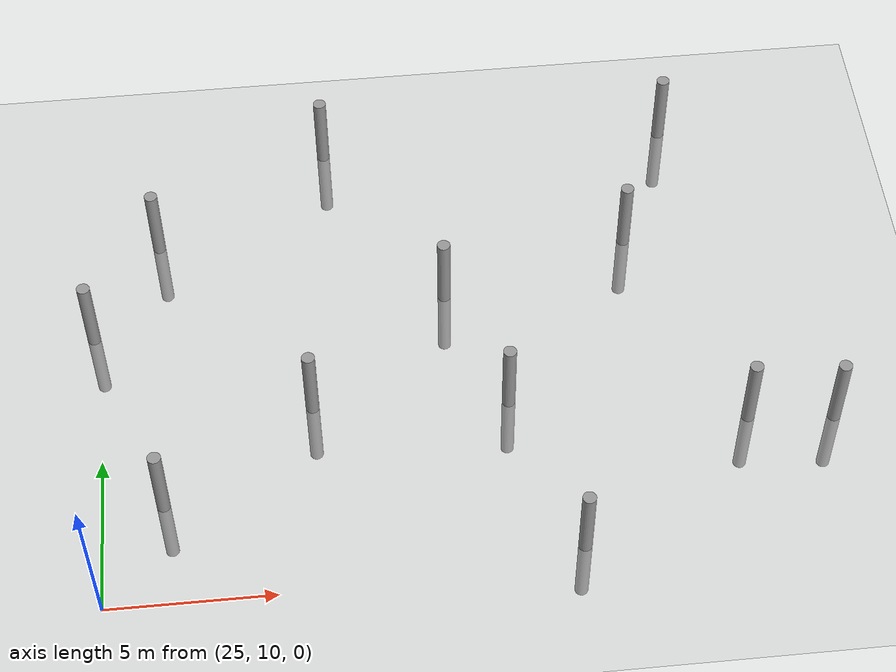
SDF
<sdf version="1.6">
 <world name="default">
  <model name="ground_plane">
   <static>1</static>
   <link name="link">
    <collision name="collision">
     <geometry><plane><normal>0 0 1</normal><size>100 100</size></plane></geometry>
     <surface><friction><ode><mu>100</mu><mu2>50</mu2></ode></friction></surface>
    </collision>
    <visual name="visual">
     <cast_shadows>0</cast_shadows>
     <geometry><plane><normal>0 0 1</normal><size>100 100</size></plane></geometry>
     <material>
      <script><uri>file://media/materials/scripts/gazebo.material</uri><name>Gazebo/Grey</name></script>
     </material>
    </visual>
   </link>
  </model>
  <model name="empty_pillars_4">
   <model name="empty_pillar_clone">
    <link name="link">
     <inertial>
      <mass>1</mass>
      <inertia><ixx>0.145833</ixx><ixy>0</ixy><ixz>0</ixz><iyy>0.145833</iyy><iyz>0</iyz><izz>0.125</izz></inertia>
     </inertial>
     <visual name="visual">
      <geometry><cylinder><radius>0.2</radius><length>5</length></cylinder></geometry>
      <material>
       <script><name>Gazebo/Grey</name><uri>file://media/materials/scripts/gazebo.material</uri></script>
       <shader type="vertex"><normal_map>__default__</normal_map></shader>
       <ambient>0.3 0.3 0.3 1</ambient>
       <diffuse>0.7 0.7 0.7 1</diffuse>
       <specular>0.01 0.01 0.01 1</specular>
       <emissive>0 0 0 1</emissive>
      </material>
     </visual>
     <collision name="collision">
      <geometry><cylinder><radius>0.05</radius><length>5</length></cylinder></geometry>
      <surface>
       <friction>
        <ode><mu>1</mu><mu2>1</mu2><fdir1>0 0 0</fdir1><slip1>0</slip1><slip2>0</slip2></ode>
        <torsional>
         <coefficient>1</coefficient>
         <patch_radius>0</patch_radius>
         <surface_radius>0</surface_radius>
         <use_patch_radius>1</use_patch_radius>
         <ode><slip>0</slip></ode>
        </torsional>
       </friction>
       <bounce><restitution_coefficient>0</restitution_coefficient><threshold>1e+06</threshold></bounce>
       <contact>
        <collide_without_contact>0</collide_without_contact>
        <collide_without_contact_bitmask>1</collide_without_contact_bitmask>
        <collide_bitmask>1</collide_bitmask>
        <ode>
         <soft_cfm>0</soft_cfm>
         <soft_erp>0.2</soft_erp>
         <kp>1e+13</kp>
         <kd>1</kd>
         <max_vel>0.01</max_vel>
         <min_depth>0</min_depth>
        </ode>
        <bullet>
         <split_impulse>1</split_impulse>
         <split_impulse_penetration_threshold>-0.01</split_impulse_penetration_threshold>
         <soft_cfm>0</soft_cfm>
         <soft_erp>0.2</soft_erp>
         <kp>1e+13</kp>
         <kd>1</kd>
        </bullet>
       </contact>
      </surface>
     </collision>
    </link>
    <static>0</static>
    <pose>1.47843 -4.49529 0 0 -0 0</pose>
   </model>
   <model name="empty_pillar_clone_0">
    <link name="link">
     <inertial>
      <mass>1</mass>
      <inertia><ixx>0.145833</ixx><ixy>0</ixy><ixz>0</ixz><iyy>0.145833</iyy><iyz>0</iyz><izz>0.125</izz></inertia>
     </inertial>
     <visual name="visual">
      <geometry><cylinder><radius>0.2</radius><length>5</length></cylinder></geometry>
      <material>
       <script><name>Gazebo/Grey</name><uri>file://media/materials/scripts/gazebo.material</uri></script>
       <shader type="vertex"><normal_map>__default__</normal_map></shader>
       <ambient>0.3 0.3 0.3 1</ambient>
       <diffuse>0.7 0.7 0.7 1</diffuse>
       <specular>0.01 0.01 0.01 1</specular>
       <emissive>0 0 0 1</emissive>
      </material>
     </visual>
     <collision name="collision">
      <geometry><cylinder><radius>0.05</radius><length>5</length></cylinder></geometry>
      <surface>
       <friction>
        <ode><mu>1</mu><mu2>1</mu2><fdir1>0 0 0</fdir1><slip1>0</slip1><slip2>0</slip2></ode>
        <torsional>
         <coefficient>1</coefficient>
         <patch_radius>0</patch_radius>
         <surface_radius>0</surface_radius>
         <use_patch_radius>1</use_patch_radius>
         <ode><slip>0</slip></ode>
        </torsional>
       </friction>
       <bounce><restitution_coefficient>0</restitution_coefficient><threshold>1e+06</threshold></bounce>
       <contact>
        <collide_without_contact>0</collide_without_contact>
        <collide_without_contact_bitmask>1</collide_without_contact_bitmask>
        <collide_bitmask>1</collide_bitmask>
        <ode>
         <soft_cfm>0</soft_cfm>
         <soft_erp>0.2</soft_erp>
         <kp>1e+13</kp>
         <kd>1</kd>
         <max_vel>0.01</max_vel>
         <min_depth>0</min_depth>
        </ode>
        <bullet>
         <split_impulse>1</split_impulse>
         <split_impulse_penetration_threshold>-0.01</split_impulse_penetration_threshold>
         <soft_cfm>0</soft_cfm>
         <soft_erp>0.2</soft_erp>
         <kp>1e+13</kp>
         <kd>1</kd>
        </bullet>
       </contact>
      </surface>
     </collision>
    </link>
    <static>0</static>
    <pose>10.3453 -7.35986 0 0 -0 0</pose>
   </model>
   <model name="empty_pillar_clone_10">
    <link name="link">
     <inertial>
      <mass>1</mass>
      <inertia><ixx>0.145833</ixx><ixy>0</ixy><ixz>0</ixz><iyy>0.145833</iyy><iyz>0</iyz><izz>0.125</izz></inertia>
     </inertial>
     <visual name="visual">
      <geometry><cylinder><radius>0.2</radius><length>5</length></cylinder></geometry>
      <material>
       <script><name>Gazebo/Grey</name><uri>file://media/materials/scripts/gazebo.material</uri></script>
       <shader type="vertex"><normal_map>__default__</normal_map></shader>
       <ambient>0.3 0.3 0.3 1</ambient>
       <diffuse>0.7 0.7 0.7 1</diffuse>
       <specular>0.01 0.01 0.01 1</specular>
       <emissive>0 0 0 1</emissive>
      </material>
     </visual>
     <collision name="collision">
      <geometry><cylinder><radius>0.05</radius><length>5</length></cylinder></geometry>
      <surface>
       <friction>
        <ode><mu>1</mu><mu2>1</mu2><fdir1>0 0 0</fdir1><slip1>0</slip1><slip2>0</slip2></ode>
        <torsional>
         <coefficient>1</coefficient>
         <patch_radius>0</patch_radius>
         <surface_radius>0</surface_radius>
         <use_patch_radius>1</use_patch_radius>
         <ode><slip>0</slip></ode>
        </torsional>
       </friction>
       <bounce><restitution_coefficient>0</restitution_coefficient><threshold>1e+06</threshold></bounce>
       <contact>
        <collide_without_contact>0</collide_without_contact>
        <collide_without_contact_bitmask>1</collide_without_contact_bitmask>
        <collide_bitmask>1</collide_bitmask>
        <ode>
         <soft_cfm>0</soft_cfm>
         <soft_erp>0.2</soft_erp>
         <kp>1e+13</kp>
         <kd>1</kd>
         <max_vel>0.01</max_vel>
         <min_depth>0</min_depth>
        </ode>
        <bullet>
         <split_impulse>1</split_impulse>
         <split_impulse_penetration_threshold>-0.01</split_impulse_penetration_threshold>
         <soft_cfm>0</soft_cfm>
         <soft_erp>0.2</soft_erp>
         <kp>1e+13</kp>
         <kd>1</kd>
        </bullet>
       </contact>
      </surface>
     </collision>
    </link>
    <static>0</static>
    <pose>13.5083 -16.8403 0 0 -0 0</pose>
   </model>
   <model name="empty_pillar_clone_2">
    <link name="link">
     <inertial>
      <mass>1</mass>
      <inertia><ixx>0.145833</ixx><ixy>0</ixy><ixz>0</ixz><iyy>0.145833</iyy><iyz>0</iyz><izz>0.125</izz></inertia>
     </inertial>
     <visual name="visual">
      <geometry><cylinder><radius>0.2</radius><length>5</length></cylinder></geometry>
      <material>
       <script><name>Gazebo/Grey</name><uri>file://media/materials/scripts/gazebo.material</uri></script>
       <shader type="vertex"><normal_map>__default__</normal_map></shader>
       <ambient>0.3 0.3 0.3 1</ambient>
       <diffuse>0.7 0.7 0.7 1</diffuse>
       <specular>0.01 0.01 0.01 1</specular>
       <emissive>0 0 0 1</emissive>
      </material>
     </visual>
     <collision name="collision">
      <geometry><cylinder><radius>0.05</radius><length>5</length></cylinder></geometry>
      <surface>
       <friction>
        <ode><mu>1</mu><mu2>1</mu2><fdir1>0 0 0</fdir1><slip1>0</slip1><slip2>0</slip2></ode>
        <torsional>
         <coefficient>1</coefficient>
         <patch_radius>0</patch_radius>
         <surface_radius>0</surface_radius>
         <use_patch_radius>1</use_patch_radius>
         <ode><slip>0</slip></ode>
        </torsional>
       </friction>
       <bounce><restitution_coefficient>0</restitution_coefficient><threshold>1e+06</threshold></bounce>
       <contact>
        <collide_without_contact>0</collide_without_contact>
        <collide_without_contact_bitmask>1</collide_without_contact_bitmask>
        <collide_bitmask>1</collide_bitmask>
        <ode>
         <soft_cfm>0</soft_cfm>
         <soft_erp>0.2</soft_erp>
         <kp>1e+13</kp>
         <kd>1</kd>
         <max_vel>0.01</max_vel>
         <min_depth>0</min_depth>
        </ode>
        <bullet>
         <split_impulse>1</split_impulse>
         <split_impulse_penetration_threshold>-0.01</split_impulse_penetration_threshold>
         <soft_cfm>0</soft_cfm>
         <soft_erp>0.2</soft_erp>
         <kp>1e+13</kp>
         <kd>1</kd>
        </bullet>
       </contact>
      </surface>
     </collision>
    </link>
    <static>0</static>
    <pose>6.92427 -1.06221 0 0 -0 0</pose>
   </model>
   <model name="empty_pillar_clone_3">
    <link name="link">
     <inertial>
      <mass>1</mass>
      <inertia><ixx>0.145833</ixx><ixy>0</ixy><ixz>0</ixz><iyy>0.145833</iyy><iyz>0</iyz><izz>0.125</izz></inertia>
     </inertial>
     <visual name="visual">
      <geometry><cylinder><radius>0.2</radius><length>5</length></cylinder></geometry>
      <material>
       <script><name>Gazebo/Grey</name><uri>file://media/materials/scripts/gazebo.material</uri></script>
       <shader type="vertex"><normal_map>__default__</normal_map></shader>
       <ambient>0.3 0.3 0.3 1</ambient>
       <diffuse>0.7 0.7 0.7 1</diffuse>
       <specular>0.01 0.01 0.01 1</specular>
       <emissive>0 0 0 1</emissive>
      </material>
     </visual>
     <collision name="collision">
      <geometry><cylinder><radius>0.05</radius><length>5</length></cylinder></geometry>
      <surface>
       <friction>
        <ode><mu>1</mu><mu2>1</mu2><fdir1>0 0 0</fdir1><slip1>0</slip1><slip2>0</slip2></ode>
        <torsional>
         <coefficient>1</coefficient>
         <patch_radius>0</patch_radius>
         <surface_radius>0</surface_radius>
         <use_patch_radius>1</use_patch_radius>
         <ode><slip>0</slip></ode>
        </torsional>
       </friction>
       <bounce><restitution_coefficient>0</restitution_coefficient><threshold>1e+06</threshold></bounce>
       <contact>
        <collide_without_contact>0</collide_without_contact>
        <collide_without_contact_bitmask>1</collide_without_contact_bitmask>
        <collide_bitmask>1</collide_bitmask>
        <ode>
         <soft_cfm>0</soft_cfm>
         <soft_erp>0.2</soft_erp>
         <kp>1e+13</kp>
         <kd>1</kd>
         <max_vel>0.01</max_vel>
         <min_depth>0</min_depth>
        </ode>
        <bullet>
         <split_impulse>1</split_impulse>
         <split_impulse_penetration_threshold>-0.01</split_impulse_penetration_threshold>
         <soft_cfm>0</soft_cfm>
         <soft_erp>0.2</soft_erp>
         <kp>1e+13</kp>
         <kd>1</kd>
        </bullet>
       </contact>
      </surface>
     </collision>
    </link>
    <static>0</static>
    <pose>5.99316 -11.2211 0 0 -0 0</pose>
   </model>
   <model name="empty_pillar_clone_33">
    <link name="link">
     <inertial>
      <mass>1</mass>
      <inertia><ixx>0.145833</ixx><ixy>0</ixy><ixz>0</ixz><iyy>0.145833</iyy><iyz>0</iyz><izz>0.125</izz></inertia>
     </inertial>
     <visual name="visual">
      <geometry><cylinder><radius>0.2</radius><length>5</length></cylinder></geometry>
      <material>
       <script><name>Gazebo/Grey</name><uri>file://media/materials/scripts/gazebo.material</uri></script>
       <shader type="vertex"><normal_map>__default__</normal_map></shader>
       <ambient>0.3 0.3 0.3 1</ambient>
       <diffuse>0.7 0.7 0.7 1</diffuse>
       <specular>0.01 0.01 0.01 1</specular>
       <emissive>0 0 0 1</emissive>
      </material>
     </visual>
     <collision name="collision">
      <geometry><cylinder><radius>0.05</radius><length>5</length></cylinder></geometry>
      <surface>
       <friction>
        <ode><mu>1</mu><mu2>1</mu2><fdir1>0 0 0</fdir1><slip1>0</slip1><slip2>0</slip2></ode>
        <torsional>
         <coefficient>1</coefficient>
         <patch_radius>0</patch_radius>
         <surface_radius>0</surface_radius>
         <use_patch_radius>1</use_patch_radius>
         <ode><slip>0</slip></ode>
        </torsional>
       </friction>
       <bounce><restitution_coefficient>0</restitution_coefficient><threshold>1e+06</threshold></bounce>
       <contact>
        <collide_without_contact>0</collide_without_contact>
        <collide_without_contact_bitmask>1</collide_without_contact_bitmask>
        <collide_bitmask>1</collide_bitmask>
        <ode>
         <soft_cfm>0</soft_cfm>
         <soft_erp>0.2</soft_erp>
         <kp>1e+13</kp>
         <kd>1</kd>
         <max_vel>0.01</max_vel>
         <min_depth>0</min_depth>
        </ode>
        <bullet>
         <split_impulse>1</split_impulse>
         <split_impulse_penetration_threshold>-0.01</split_impulse_penetration_threshold>
         <soft_cfm>0</soft_cfm>
         <soft_erp>0.2</soft_erp>
         <kp>1e+13</kp>
         <kd>1</kd>
        </bullet>
       </contact>
      </surface>
     </collision>
    </link>
    <static>0</static>
    <pose>21.5621 -13.0704 0 0 -0 0</pose>
   </model>
   <model name="empty_pillar_clone_4">
    <link name="link">
     <inertial>
      <mass>1</mass>
      <inertia><ixx>0.145833</ixx><ixy>0</ixy><ixz>0</ixz><iyy>0.145833</iyy><iyz>0</iyz><izz>0.125</izz></inertia>
     </inertial>
     <visual name="visual">
      <geometry><cylinder><radius>0.2</radius><length>5</length></cylinder></geometry>
      <material>
       <script><name>Gazebo/Grey</name><uri>file://media/materials/scripts/gazebo.material</uri></script>
       <shader type="vertex"><normal_map>__default__</normal_map></shader>
       <ambient>0.3 0.3 0.3 1</ambient>
       <diffuse>0.7 0.7 0.7 1</diffuse>
       <specular>0.01 0.01 0.01 1</specular>
       <emissive>0 0 0 1</emissive>
      </material>
     </visual>
     <collision name="collision">
      <geometry><cylinder><radius>0.05</radius><length>5</length></cylinder></geometry>
      <surface>
       <friction>
        <ode><mu>1</mu><mu2>1</mu2><fdir1>0 0 0</fdir1><slip1>0</slip1><slip2>0</slip2></ode>
        <torsional>
         <coefficient>1</coefficient>
         <patch_radius>0</patch_radius>
         <surface_radius>0</surface_radius>
         <use_patch_radius>1</use_patch_radius>
         <ode><slip>0</slip></ode>
        </torsional>
       </friction>
       <bounce><restitution_coefficient>0</restitution_coefficient><threshold>1e+06</threshold></bounce>
       <contact>
        <collide_without_contact>0</collide_without_contact>
        <collide_without_contact_bitmask>1</collide_without_contact_bitmask>
        <collide_bitmask>1</collide_bitmask>
        <ode>
         <soft_cfm>0</soft_cfm>
         <soft_erp>0.2</soft_erp>
         <kp>1e+13</kp>
         <kd>1</kd>
         <max_vel>0.01</max_vel>
         <min_depth>0</min_depth>
        </ode>
        <bullet>
         <split_impulse>1</split_impulse>
         <split_impulse_penetration_threshold>-0.01</split_impulse_penetration_threshold>
         <soft_cfm>0</soft_cfm>
         <soft_erp>0.2</soft_erp>
         <kp>1e+13</kp>
         <kd>1</kd>
        </bullet>
       </contact>
      </surface>
     </collision>
    </link>
    <static>0</static>
    <pose>1.48428 -14.2998 0 0 -0 0</pose>
   </model>
   <model name="empty_pillar_clone_47">
    <link name="link">
     <inertial>
      <mass>1</mass>
      <inertia><ixx>0.145833</ixx><ixy>0</ixy><ixz>0</ixz><iyy>0.145833</iyy><iyz>0</iyz><izz>0.125</izz></inertia>
     </inertial>
     <visual name="visual">
      <geometry><cylinder><radius>0.2</radius><length>5</length></cylinder></geometry>
      <material>
       <script><name>Gazebo/Grey</name><uri>file://media/materials/scripts/gazebo.material</uri></script>
       <shader type="vertex"><normal_map>__default__</normal_map></shader>
       <ambient>0.3 0.3 0.3 1</ambient>
       <diffuse>0.7 0.7 0.7 1</diffuse>
       <specular>0.01 0.01 0.01 1</specular>
       <emissive>0 0 0 1</emissive>
      </material>
     </visual>
     <collision name="collision">
      <geometry><cylinder><radius>0.05</radius><length>5</length></cylinder></geometry>
      <surface>
       <friction>
        <ode><mu>1</mu><mu2>1</mu2><fdir1>0 0 0</fdir1><slip1>0</slip1><slip2>0</slip2></ode>
        <torsional>
         <coefficient>1</coefficient>
         <patch_radius>0</patch_radius>
         <surface_radius>0</surface_radius>
         <use_patch_radius>1</use_patch_radius>
         <ode><slip>0</slip></ode>
        </torsional>
       </friction>
       <bounce><restitution_coefficient>0</restitution_coefficient><threshold>1e+06</threshold></bounce>
       <contact>
        <collide_without_contact>0</collide_without_contact>
        <collide_without_contact_bitmask>1</collide_without_contact_bitmask>
        <collide_bitmask>1</collide_bitmask>
        <ode>
         <soft_cfm>0</soft_cfm>
         <soft_erp>0.2</soft_erp>
         <kp>1e+13</kp>
         <kd>1</kd>
         <max_vel>0.01</max_vel>
         <min_depth>0</min_depth>
        </ode>
        <bullet>
         <split_impulse>1</split_impulse>
         <split_impulse_penetration_threshold>-0.01</split_impulse_penetration_threshold>
         <soft_cfm>0</soft_cfm>
         <soft_erp>0.2</soft_erp>
         <kp>1e+13</kp>
         <kd>1</kd>
        </bullet>
       </contact>
      </surface>
     </collision>
    </link>
    <static>0</static>
    <pose>-0.569433 -7.97346 0 0 -0 0</pose>
   </model>
   <model name="empty_pillar_clone_48">
    <link name="link">
     <inertial>
      <mass>1</mass>
      <inertia><ixx>0.145833</ixx><ixy>0</ixy><ixz>0</ixz><iyy>0.145833</iyy><iyz>0</iyz><izz>0.125</izz></inertia>
     </inertial>
     <visual name="visual">
      <geometry><cylinder><radius>0.2</radius><length>5</length></cylinder></geometry>
      <material>
       <script><name>Gazebo/Grey</name><uri>file://media/materials/scripts/gazebo.material</uri></script>
       <shader type="vertex"><normal_map>__default__</normal_map></shader>
       <ambient>0.3 0.3 0.3 1</ambient>
       <diffuse>0.7 0.7 0.7 1</diffuse>
       <specular>0.01 0.01 0.01 1</specular>
       <emissive>0 0 0 1</emissive>
      </material>
     </visual>
     <collision name="collision">
      <geometry><cylinder><radius>0.05</radius><length>5</length></cylinder></geometry>
      <surface>
       <friction>
        <ode><mu>1</mu><mu2>1</mu2><fdir1>0 0 0</fdir1><slip1>0</slip1><slip2>0</slip2></ode>
        <torsional>
         <coefficient>1</coefficient>
         <patch_radius>0</patch_radius>
         <surface_radius>0</surface_radius>
         <use_patch_radius>1</use_patch_radius>
         <ode><slip>0</slip></ode>
        </torsional>
       </friction>
       <bounce><restitution_coefficient>0</restitution_coefficient><threshold>1e+06</threshold></bounce>
       <contact>
        <collide_without_contact>0</collide_without_contact>
        <collide_without_contact_bitmask>1</collide_without_contact_bitmask>
        <collide_bitmask>1</collide_bitmask>
        <ode>
         <soft_cfm>0</soft_cfm>
         <soft_erp>0.2</soft_erp>
         <kp>1e+13</kp>
         <kd>1</kd>
         <max_vel>0.01</max_vel>
         <min_depth>0</min_depth>
        </ode>
        <bullet>
         <split_impulse>1</split_impulse>
         <split_impulse_penetration_threshold>-0.01</split_impulse_penetration_threshold>
         <soft_cfm>0</soft_cfm>
         <soft_erp>0.2</soft_erp>
         <kp>1e+13</kp>
         <kd>1</kd>
        </bullet>
       </contact>
      </surface>
     </collision>
    </link>
    <static>0</static>
    <pose>16.2633 -5.65052 0 0 -0 0</pose>
   </model>
   <model name="empty_pillar_clone_51">
    <link name="link">
     <inertial>
      <mass>1</mass>
      <inertia><ixx>0.145833</ixx><ixy>0</ixy><ixz>0</ixz><iyy>0.145833</iyy><iyz>0</iyz><izz>0.125</izz></inertia>
     </inertial>
     <visual name="visual">
      <geometry><cylinder><radius>0.2</radius><length>5</length></cylinder></geometry>
      <material>
       <script><name>Gazebo/Grey</name><uri>file://media/materials/scripts/gazebo.material</uri></script>
       <shader type="vertex"><normal_map>__default__</normal_map></shader>
       <ambient>0.3 0.3 0.3 1</ambient>
       <diffuse>0.7 0.7 0.7 1</diffuse>
       <specular>0.01 0.01 0.01 1</specular>
       <emissive>0 0 0 1</emissive>
      </material>
     </visual>
     <collision name="collision">
      <geometry><cylinder><radius>0.05</radius><length>5</length></cylinder></geometry>
      <surface>
       <friction>
        <ode><mu>1</mu><mu2>1</mu2><fdir1>0 0 0</fdir1><slip1>0</slip1><slip2>0</slip2></ode>
        <torsional>
         <coefficient>1</coefficient>
         <patch_radius>0</patch_radius>
         <surface_radius>0</surface_radius>
         <use_patch_radius>1</use_patch_radius>
         <ode><slip>0</slip></ode>
        </torsional>
       </friction>
       <bounce><restitution_coefficient>0</restitution_coefficient><threshold>1e+06</threshold></bounce>
       <contact>
        <collide_without_contact>0</collide_without_contact>
        <collide_without_contact_bitmask>1</collide_without_contact_bitmask>
        <collide_bitmask>1</collide_bitmask>
        <ode>
         <soft_cfm>0</soft_cfm>
         <soft_erp>0.2</soft_erp>
         <kp>1e+13</kp>
         <kd>1</kd>
         <max_vel>0.01</max_vel>
         <min_depth>0</min_depth>
        </ode>
        <bullet>
         <split_impulse>1</split_impulse>
         <split_impulse_penetration_threshold>-0.01</split_impulse_penetration_threshold>
         <soft_cfm>0</soft_cfm>
         <soft_erp>0.2</soft_erp>
         <kp>1e+13</kp>
         <kd>1</kd>
        </bullet>
       </contact>
      </surface>
     </collision>
    </link>
    <static>0</static>
    <pose>11.8943 -11.5792 0 0 -0 0</pose>
   </model>
   <model name="empty_pillar_clone_8">
    <link name="link">
     <inertial>
      <mass>1</mass>
      <inertia><ixx>0.145833</ixx><ixy>0</ixy><ixz>0</ixz><iyy>0.145833</iyy><iyz>0</iyz><izz>0.125</izz></inertia>
     </inertial>
     <visual name="visual">
      <geometry><cylinder><radius>0.2</radius><length>5</length></cylinder></geometry>
      <material>
       <script><name>Gazebo/Grey</name><uri>file://media/materials/scripts/gazebo.material</uri></script>
       <shader type="vertex"><normal_map>__default__</normal_map></shader>
       <ambient>0.3 0.3 0.3 1</ambient>
       <diffuse>0.7 0.7 0.7 1</diffuse>
       <specular>0.01 0.01 0.01 1</specular>
       <emissive>0 0 0 1</emissive>
      </material>
     </visual>
     <collision name="collision">
      <geometry><cylinder><radius>0.05</radius><length>5</length></cylinder></geometry>
      <surface>
       <friction>
        <ode><mu>1</mu><mu2>1</mu2><fdir1>0 0 0</fdir1><slip1>0</slip1><slip2>0</slip2></ode>
        <torsional>
         <coefficient>1</coefficient>
         <patch_radius>0</patch_radius>
         <surface_radius>0</surface_radius>
         <use_patch_radius>1</use_patch_radius>
         <ode><slip>0</slip></ode>
        </torsional>
       </friction>
       <bounce><restitution_coefficient>0</restitution_coefficient><threshold>1e+06</threshold></bounce>
       <contact>
        <collide_without_contact>0</collide_without_contact>
        <collide_without_contact_bitmask>1</collide_without_contact_bitmask>
        <collide_bitmask>1</collide_bitmask>
        <ode>
         <soft_cfm>0</soft_cfm>
         <soft_erp>0.2</soft_erp>
         <kp>1e+13</kp>
         <kd>1</kd>
         <max_vel>0.01</max_vel>
         <min_depth>0</min_depth>
        </ode>
        <bullet>
         <split_impulse>1</split_impulse>
         <split_impulse_penetration_threshold>-0.01</split_impulse_penetration_threshold>
         <soft_cfm>0</soft_cfm>
         <soft_erp>0.2</soft_erp>
         <kp>1e+13</kp>
         <kd>1</kd>
        </bullet>
       </contact>
      </surface>
     </collision>
    </link>
    <static>0</static>
    <pose>18.9854 -12.8403 0 0 -0 0</pose>
   </model>
   <model name="empty_pillar_clone_9">
    <link name="link">
     <inertial>
      <mass>1</mass>
      <inertia><ixx>0.145833</ixx><ixy>0</ixy><ixz>0</ixz><iyy>0.145833</iyy><iyz>0</iyz><izz>0.125</izz></inertia>
     </inertial>
     <visual name="visual">
      <geometry><cylinder><radius>0.2</radius><length>5</length></cylinder></geometry>
      <material>
       <script><name>Gazebo/Grey</name><uri>file://media/materials/scripts/gazebo.material</uri></script>
       <shader type="vertex"><normal_map>__default__</normal_map></shader>
       <ambient>0.3 0.3 0.3 1</ambient>
       <diffuse>0.7 0.7 0.7 1</diffuse>
       <specular>0.01 0.01 0.01 1</specular>
       <emissive>0 0 0 1</emissive>
      </material>
     </visual>
     <collision name="collision">
      <geometry><cylinder><radius>0.05</radius><length>5</length></cylinder></geometry>
      <surface>
       <friction>
        <ode><mu>1</mu><mu2>1</mu2><fdir1>0 0 0</fdir1><slip1>0</slip1><slip2>0</slip2></ode>
        <torsional>
         <coefficient>1</coefficient>
         <patch_radius>0</patch_radius>
         <surface_radius>0</surface_radius>
         <use_patch_radius>1</use_patch_radius>
         <ode><slip>0</slip></ode>
        </torsional>
       </friction>
       <bounce><restitution_coefficient>0</restitution_coefficient><threshold>1e+06</threshold></bounce>
       <contact>
        <collide_without_contact>0</collide_without_contact>
        <collide_without_contact_bitmask>1</collide_without_contact_bitmask>
        <collide_bitmask>1</collide_bitmask>
        <ode>
         <soft_cfm>0</soft_cfm>
         <soft_erp>0.2</soft_erp>
         <kp>1e+13</kp>
         <kd>1</kd>
         <max_vel>0.01</max_vel>
         <min_depth>0</min_depth>
        </ode>
        <bullet>
         <split_impulse>1</split_impulse>
         <split_impulse_penetration_threshold>-0.01</split_impulse_penetration_threshold>
         <soft_cfm>0</soft_cfm>
         <soft_erp>0.2</soft_erp>
         <kp>1e+13</kp>
         <kd>1</kd>
        </bullet>
       </contact>
      </surface>
     </collision>
    </link>
    <static>0</static>
    <pose>18.1111 -1.13899 0 0 -0 0</pose>
   </model>
   <static>0</static>
   <pose>25.2837 27.6164 0 0 -0 0</pose>
  </model>
 </world>
</sdf>
